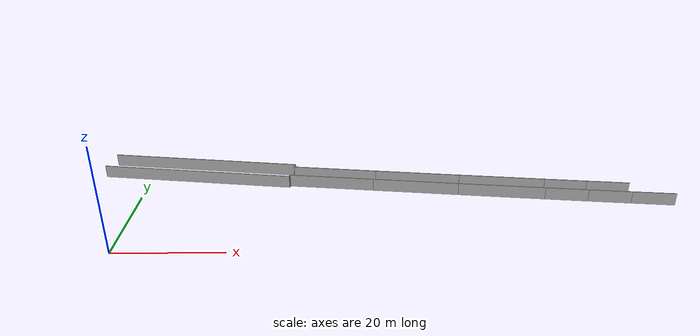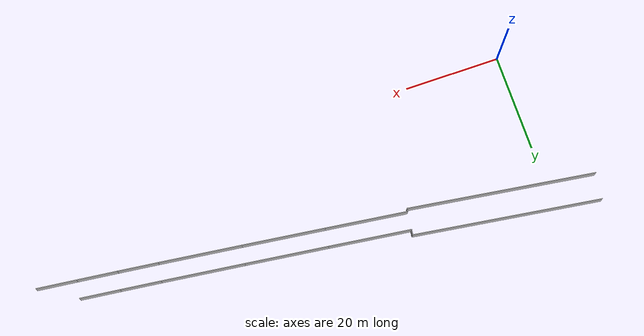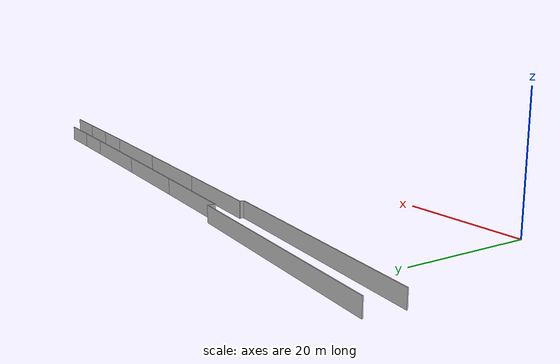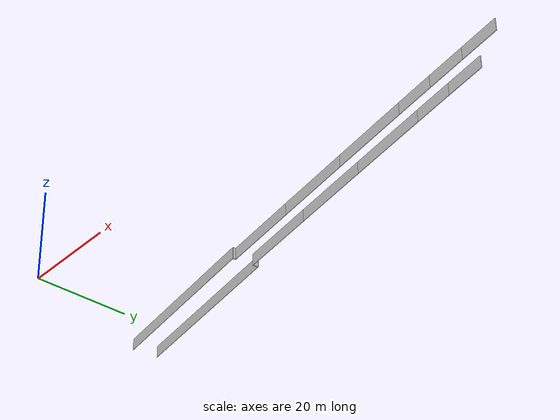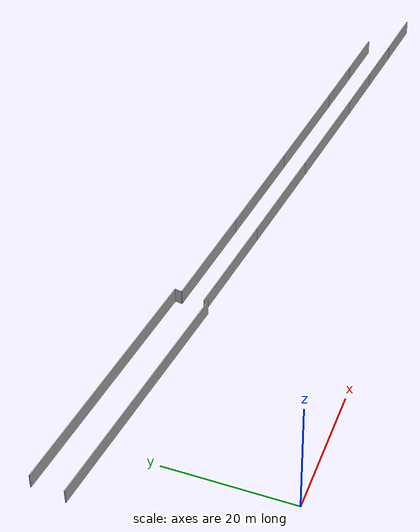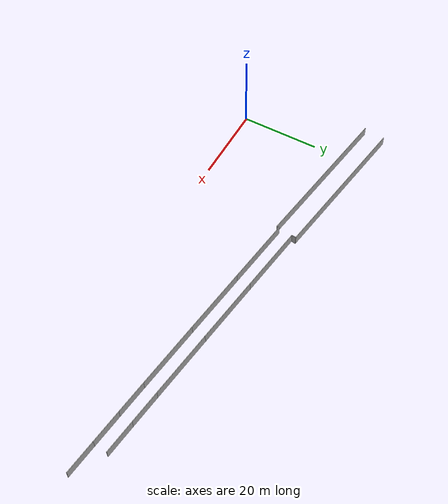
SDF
<?xml version="1.0" ?>
<sdf version="1.6">
  <model name="sps_1701">
    <pose frame="">0 0 0 0 -0 0</pose>
    <static>1</static>
    <self_collide>0</self_collide>
    <allow_auto_disable>0</allow_auto_disable>
    <link name="Wall138">
      <kinematic>0</kinematic>
      <gravity>1</gravity>
      <self_collide>0</self_collide>
      <collision name="collision">
        <geometry>
          <box>
            <size>38.9757 0.15 2.5</size>
          </box>
        </geometry>
        <pose frame="">0 0 0 0 -0 0</pose>
      </collision>
      <visual name="visual">
        <geometry>
          <box>
            <size>38.9757 0.15 2.5</size>
          </box>
        </geometry>
        <pose frame="">0 0 0 0 -0 0</pose>
        <cast_shadows>1</cast_shadows>
        <transparency>0.0</transparency>
      </visual>
      <pose frame="">9.36843 26.7704 1.25 0 -0 2.99862</pose>
    </link>
    <link name="Wall307">
      <kinematic>0</kinematic>
      <gravity>1</gravity>
      <self_collide>0</self_collide>
      <collision name="collision">
        <geometry>
          <box>
            <size>0.626444 0.15 2.5</size>
          </box>
        </geometry>
        <pose frame="">0 0 0 0 -0 0</pose>
      </collision>
      <visual name="visual">
        <geometry>
          <box>
            <size>0.626444 0.15 2.5</size>
          </box>
        </geometry>
        <pose frame="">0 0 0 0 -0 0</pose>
        <cast_shadows>1</cast_shadows>
        <transparency>0.0</transparency>
      </visual>
      <pose frame="">28.702 24.3037 1.25 0 0 -1.71373</pose>
    </link>
    <link name="Wall308">
      <kinematic>0</kinematic>
      <gravity>1</gravity>
      <self_collide>0</self_collide>
      <collision name="collision">
        <geometry>
          <box>
            <size>1.11759 0.15 2.5</size>
          </box>
        </geometry>
        <pose frame="">0 0 0 0 -0 0</pose>
      </collision>
      <visual name="visual">
        <geometry>
          <box>
            <size>1.11759 0.15 2.5</size>
          </box>
        </geometry>
        <pose frame="">0 0 0 0 -0 0</pose>
        <cast_shadows>1</cast_shadows>
        <transparency>0.0</transparency>
      </visual>
      <pose frame="">29.3609 28.8845 1.25 0 0 -1.71482</pose>
    </link>
    <link name="Wall640">
      <kinematic>0</kinematic>
      <gravity>1</gravity>
      <self_collide>0</self_collide>
      <collision name="collision">
        <geometry>
          <box>
            <size>39.0158 0.15 2.5</size>
          </box>
        </geometry>
        <pose frame="">0 0 0 0 -0 0</pose>
      </collision>
      <visual name="visual">
        <geometry>
          <box>
            <size>39.0158 0.15 2.5</size>
          </box>
        </geometry>
        <pose frame="">0 0 0 0 -0 0</pose>
        <cast_shadows>1</cast_shadows>
        <transparency>0.0</transparency>
      </visual>
      <pose frame="">10.1322 32.217 1.25 0 0 -0.142966</pose>
    </link>
    <link name="Wall4261">
      <kinematic>0</kinematic>
      <gravity>1</gravity>
      <self_collide>0</self_collide>
      <collision name="collision">
        <geometry>
          <box>
            <size>16.9873 0.15 2.5</size>
          </box>
        </geometry>
        <pose frame="">0 0 0 0 -0 0</pose>
      </collision>
      <visual name="visual">
        <geometry>
          <box>
            <size>16.9873 0.15 2.5</size>
          </box>
        </geometry>
        <pose frame="">0 0 0 0 -0 0</pose>
        <cast_shadows>1</cast_shadows>
        <transparency>0.0</transparency>
      </visual>
      <pose frame="">37.702 27.2261 1.25 0 0 -0.130516</pose>
    </link>
    <link name="Wall4262">
      <kinematic>0</kinematic>
      <gravity>1</gravity>
      <self_collide>0</self_collide>
      <collision name="collision">
        <geometry>
          <box>
            <size>16.9873 0.15 2.5</size>
          </box>
        </geometry>
        <pose frame="">0 0 0 0 -0 0</pose>
      </collision>
      <visual name="visual">
        <geometry>
          <box>
            <size>16.9873 0.15 2.5</size>
          </box>
        </geometry>
        <pose frame="">0 0 0 0 -0 0</pose>
        <cast_shadows>1</cast_shadows>
        <transparency>0.0</transparency>
      </visual>
      <pose frame="">54.5474 25.0352 1.25 0 0 -0.128149</pose>
    </link>
    <link name="Wall4263">
      <kinematic>0</kinematic>
      <gravity>1</gravity>
      <self_collide>0</self_collide>
      <collision name="collision">
        <geometry>
          <box>
            <size>16.9874 0.15 2.5</size>
          </box>
        </geometry>
        <pose frame="">0 0 0 0 -0 0</pose>
      </collision>
      <visual name="visual">
        <geometry>
          <box>
            <size>16.9874 0.15 2.5</size>
          </box>
        </geometry>
        <pose frame="">0 0 0 0 -0 0</pose>
        <cast_shadows>1</cast_shadows>
        <transparency>0.0</transparency>
      </visual>
      <pose frame="">71.3981 22.8841 1.25 0 0 -0.12579</pose>
    </link>
    <link name="Wall4264">
      <kinematic>0</kinematic>
      <gravity>1</gravity>
      <self_collide>0</self_collide>
      <collision name="collision">
        <geometry>
          <box>
            <size>8.25191 0.15 2.5</size>
          </box>
        </geometry>
        <pose frame="">0 0 0 0 -0 0</pose>
      </collision>
      <visual name="visual">
        <geometry>
          <box>
            <size>8.25191 0.15 2.5</size>
          </box>
        </geometry>
        <pose frame="">0 0 0 0 -0 0</pose>
        <cast_shadows>1</cast_shadows>
        <transparency>0.0</transparency>
      </visual>
      <pose frame="">83.9202 21.318 1.25 0 0 -0.121602</pose>
    </link>
    <link name="Wall4265">
      <kinematic>0</kinematic>
      <gravity>1</gravity>
      <self_collide>0</self_collide>
      <collision name="collision">
        <geometry>
          <box>
            <size>8.25183 0.15 2.5</size>
          </box>
        </geometry>
        <pose frame="">0 0 0 0 -0 0</pose>
      </collision>
      <visual name="visual">
        <geometry>
          <box>
            <size>8.25183 0.15 2.5</size>
          </box>
        </geometry>
        <pose frame="">0 0 0 0 -0 0</pose>
        <cast_shadows>1</cast_shadows>
        <transparency>0.0</transparency>
      </visual>
      <pose frame="">92.1123 20.3267 1.25 0 0 -0.119241</pose>
    </link>
    <link name="Wall9003">
      <kinematic>0</kinematic>
      <gravity>1</gravity>
      <self_collide>0</self_collide>
      <collision name="collision">
        <geometry>
          <box>
            <size>16.9672 0.15 2.5</size>
          </box>
        </geometry>
        <pose frame="">0 0 0 0 -0 0</pose>
      </collision>
      <visual name="visual">
        <geometry>
          <box>
            <size>16.9672 0.15 2.5</size>
          </box>
        </geometry>
        <pose frame="">0 0 0 0 -0 0</pose>
        <cast_shadows>1</cast_shadows>
        <transparency>0.0</transparency>
      </visual>
      <pose frame="">37.1581 23.5093 1.25 0 0 -0.130551</pose>
    </link>
    <link name="Wall9004">
      <kinematic>0</kinematic>
      <gravity>1</gravity>
      <self_collide>0</self_collide>
      <collision name="collision">
        <geometry>
          <box>
            <size>16.967 0.15 2.5</size>
          </box>
        </geometry>
        <pose frame="">0 0 0 0 -0 0</pose>
      </collision>
      <visual name="visual">
        <geometry>
          <box>
            <size>16.967 0.15 2.5</size>
          </box>
        </geometry>
        <pose frame="">0 0 0 0 -0 0</pose>
        <cast_shadows>1</cast_shadows>
        <transparency>0.0</transparency>
      </visual>
      <pose frame="">53.9834 21.3204 1.25 0 0 -0.128188</pose>
    </link>
    <link name="Wall9005">
      <kinematic>0</kinematic>
      <gravity>1</gravity>
      <self_collide>0</self_collide>
      <collision name="collision">
        <geometry>
          <box>
            <size>16.9673 0.15 2.5</size>
          </box>
        </geometry>
        <pose frame="">0 0 0 0 -0 0</pose>
      </collision>
      <visual name="visual">
        <geometry>
          <box>
            <size>16.9673 0.15 2.5</size>
          </box>
        </geometry>
        <pose frame="">0 0 0 0 -0 0</pose>
        <cast_shadows>1</cast_shadows>
        <transparency>0.0</transparency>
      </visual>
      <pose frame="">70.8138 19.1713 1.25 0 0 -0.125821</pose>
    </link>
    <link name="Wall9006">
      <kinematic>0</kinematic>
      <gravity>1</gravity>
      <self_collide>0</self_collide>
      <collision name="collision">
        <geometry>
          <box>
            <size>8.26169 0.15 2.5</size>
          </box>
        </geometry>
        <pose frame="">0 0 0 0 -0 0</pose>
      </collision>
      <visual name="visual">
        <geometry>
          <box>
            <size>8.26169 0.15 2.5</size>
          </box>
        </geometry>
        <pose frame="">0 0 0 0 -0 0</pose>
        <cast_shadows>1</cast_shadows>
        <transparency>0.0</transparency>
      </visual>
      <pose frame="">83.3307 17.6054 1.25 0 0 -0.121658</pose>
    </link>
    <link name="Wall9007">
      <kinematic>0</kinematic>
      <gravity>1</gravity>
      <self_collide>0</self_collide>
      <collision name="collision">
        <geometry>
          <box>
            <size>8.2619 0.15 2.5</size>
          </box>
        </geometry>
        <pose frame="">0 0 0 0 -0 0</pose>
      </collision>
      <visual name="visual">
        <geometry>
          <box>
            <size>8.2619 0.15 2.5</size>
          </box>
        </geometry>
        <pose frame="">0 0 0 0 -0 0</pose>
        <cast_shadows>1</cast_shadows>
        <transparency>0.0</transparency>
      </visual>
      <pose frame="">91.5326 16.6125 1.25 0 0 -0.119289</pose>
    </link>
    <link name="Wall9008">
      <kinematic>0</kinematic>
      <gravity>1</gravity>
      <self_collide>0</self_collide>
      <collision name="collision">
        <geometry>
          <box>
            <size>8.26158 0.15 2.5</size>
          </box>
        </geometry>
        <pose frame="">0 0 0 0 -0 0</pose>
      </collision>
      <visual name="visual">
        <geometry>
          <box>
            <size>8.26158 0.15 2.5</size>
          </box>
        </geometry>
        <pose frame="">0 0 0 0 -0 0</pose>
        <cast_shadows>1</cast_shadows>
        <transparency>0.0</transparency>
      </visual>
      <pose frame="">99.7368 15.6391 1.25 0 0 -0.116898</pose>
    </link>
  </model>
</sdf>
